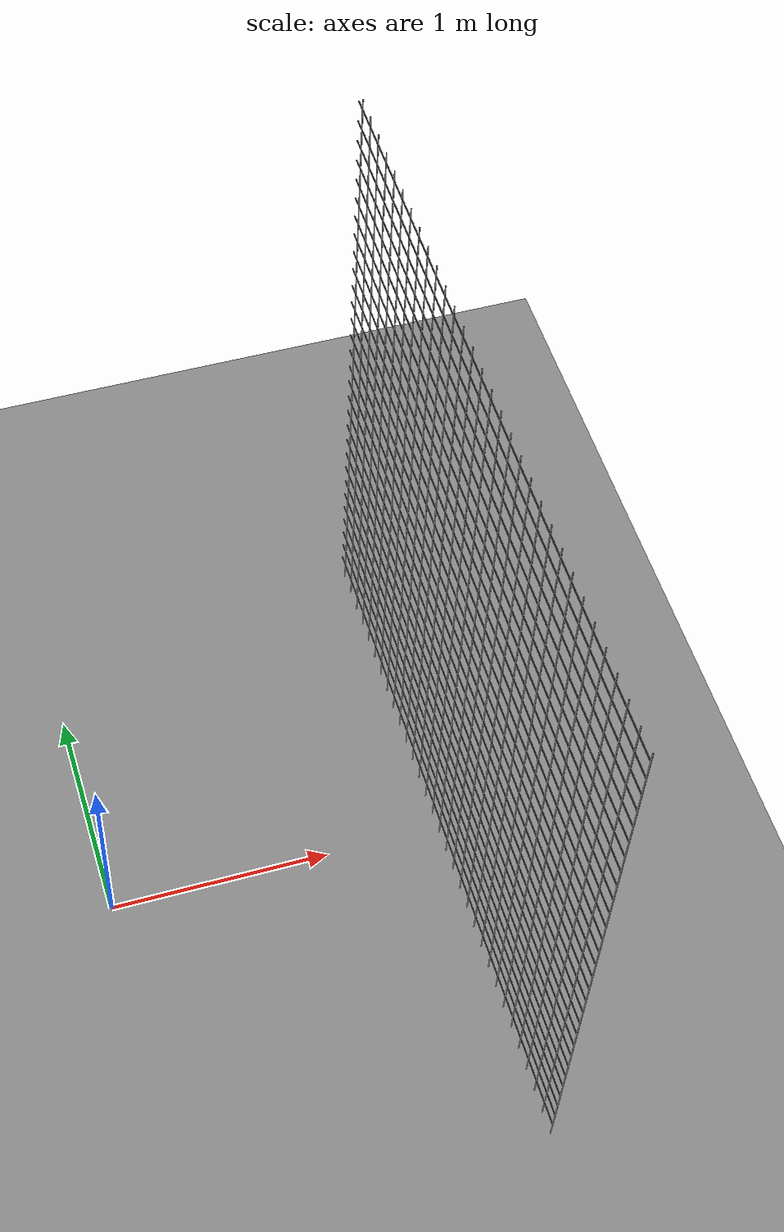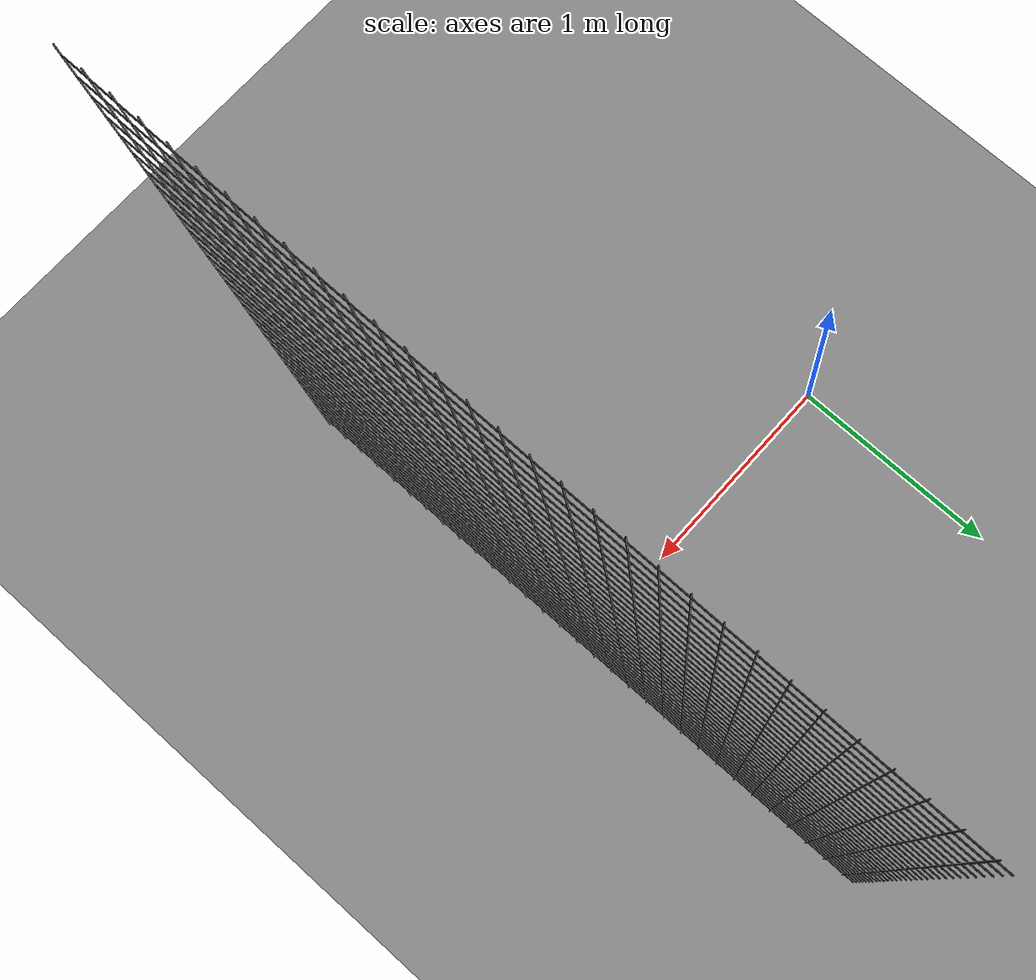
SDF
<sdf version="1.9">
 <world name="ecps295_cage10_monitor">
  <model name="ground_plane">
   <static>true</static>
   <link name="link">
    <collision name="collision">
     <geometry><plane><normal>0 0 1</normal><size>50 50</size></plane></geometry>
    </collision>
    <visual name="visual">
     <geometry><plane><normal>0 0 1</normal><size>50 50</size></plane></geometry>
     <material><ambient>0.5 0.5 0.5 1</ambient><diffuse>0.5 0.5 0.5 1</diffuse></material>
    </visual>
   </link>
  </model>
  <model name="net_e">
   <static>true</static>
   <link name="link">
    <collision name="c">
     <pose>1.525 0.000 1.525 0 0 0</pose>
     <geometry><box><size>0.020 3.050 3.050</size></box></geometry>
    </collision>
    <visual name="v0">
     <pose>1.525 -1.525 1.525 0 0 0.0000</pose>
     <geometry><box><size>0.004 0.004 3.050</size></box></geometry>
     <material><ambient>0.16 0.16 0.16 1</ambient><diffuse>0.16 0.16 0.16 1</diffuse></material>
    </visual>
    <visual name="v1">
     <pose>1.525 -1.425 1.525 0 0 0.0000</pose>
     <geometry><box><size>0.004 0.004 3.050</size></box></geometry>
     <material><ambient>0.16 0.16 0.16 1</ambient><diffuse>0.16 0.16 0.16 1</diffuse></material>
    </visual>
    <visual name="v2">
     <pose>1.525 -1.325 1.525 0 0 0.0000</pose>
     <geometry><box><size>0.004 0.004 3.050</size></box></geometry>
     <material><ambient>0.16 0.16 0.16 1</ambient><diffuse>0.16 0.16 0.16 1</diffuse></material>
    </visual>
    <visual name="v3">
     <pose>1.525 -1.225 1.525 0 0 0.0000</pose>
     <geometry><box><size>0.004 0.004 3.050</size></box></geometry>
     <material><ambient>0.16 0.16 0.16 1</ambient><diffuse>0.16 0.16 0.16 1</diffuse></material>
    </visual>
    <visual name="v4">
     <pose>1.525 -1.125 1.525 0 0 0.0000</pose>
     <geometry><box><size>0.004 0.004 3.050</size></box></geometry>
     <material><ambient>0.16 0.16 0.16 1</ambient><diffuse>0.16 0.16 0.16 1</diffuse></material>
    </visual>
    <visual name="v5">
     <pose>1.525 -1.025 1.525 0 0 0.0000</pose>
     <geometry><box><size>0.004 0.004 3.050</size></box></geometry>
     <material><ambient>0.16 0.16 0.16 1</ambient><diffuse>0.16 0.16 0.16 1</diffuse></material>
    </visual>
    <visual name="v6">
     <pose>1.525 -0.925 1.525 0 0 0.0000</pose>
     <geometry><box><size>0.004 0.004 3.050</size></box></geometry>
     <material><ambient>0.16 0.16 0.16 1</ambient><diffuse>0.16 0.16 0.16 1</diffuse></material>
    </visual>
    <visual name="v7">
     <pose>1.525 -0.825 1.525 0 0 0.0000</pose>
     <geometry><box><size>0.004 0.004 3.050</size></box></geometry>
     <material><ambient>0.16 0.16 0.16 1</ambient><diffuse>0.16 0.16 0.16 1</diffuse></material>
    </visual>
    <visual name="v8">
     <pose>1.525 -0.725 1.525 0 0 0.0000</pose>
     <geometry><box><size>0.004 0.004 3.050</size></box></geometry>
     <material><ambient>0.16 0.16 0.16 1</ambient><diffuse>0.16 0.16 0.16 1</diffuse></material>
    </visual>
    <visual name="v9">
     <pose>1.525 -0.625 1.525 0 0 0.0000</pose>
     <geometry><box><size>0.004 0.004 3.050</size></box></geometry>
     <material><ambient>0.16 0.16 0.16 1</ambient><diffuse>0.16 0.16 0.16 1</diffuse></material>
    </visual>
    <visual name="v10">
     <pose>1.525 -0.525 1.525 0 0 0.0000</pose>
     <geometry><box><size>0.004 0.004 3.050</size></box></geometry>
     <material><ambient>0.16 0.16 0.16 1</ambient><diffuse>0.16 0.16 0.16 1</diffuse></material>
    </visual>
    <visual name="v11">
     <pose>1.525 -0.425 1.525 0 0 0.0000</pose>
     <geometry><box><size>0.004 0.004 3.050</size></box></geometry>
     <material><ambient>0.16 0.16 0.16 1</ambient><diffuse>0.16 0.16 0.16 1</diffuse></material>
    </visual>
    <visual name="v12">
     <pose>1.525 -0.325 1.525 0 0 0.0000</pose>
     <geometry><box><size>0.004 0.004 3.050</size></box></geometry>
     <material><ambient>0.16 0.16 0.16 1</ambient><diffuse>0.16 0.16 0.16 1</diffuse></material>
    </visual>
    <visual name="v13">
     <pose>1.525 -0.225 1.525 0 0 0.0000</pose>
     <geometry><box><size>0.004 0.004 3.050</size></box></geometry>
     <material><ambient>0.16 0.16 0.16 1</ambient><diffuse>0.16 0.16 0.16 1</diffuse></material>
    </visual>
    <visual name="v14">
     <pose>1.525 -0.125 1.525 0 0 0.0000</pose>
     <geometry><box><size>0.004 0.004 3.050</size></box></geometry>
     <material><ambient>0.16 0.16 0.16 1</ambient><diffuse>0.16 0.16 0.16 1</diffuse></material>
    </visual>
    <visual name="v15">
     <pose>1.525 -0.025 1.525 0 0 0.0000</pose>
     <geometry><box><size>0.004 0.004 3.050</size></box></geometry>
     <material><ambient>0.16 0.16 0.16 1</ambient><diffuse>0.16 0.16 0.16 1</diffuse></material>
    </visual>
    <visual name="v16">
     <pose>1.525 0.075 1.525 0 0 0.0000</pose>
     <geometry><box><size>0.004 0.004 3.050</size></box></geometry>
     <material><ambient>0.16 0.16 0.16 1</ambient><diffuse>0.16 0.16 0.16 1</diffuse></material>
    </visual>
    <visual name="v17">
     <pose>1.525 0.175 1.525 0 0 0.0000</pose>
     <geometry><box><size>0.004 0.004 3.050</size></box></geometry>
     <material><ambient>0.16 0.16 0.16 1</ambient><diffuse>0.16 0.16 0.16 1</diffuse></material>
    </visual>
    <visual name="v18">
     <pose>1.525 0.275 1.525 0 0 0.0000</pose>
     <geometry><box><size>0.004 0.004 3.050</size></box></geometry>
     <material><ambient>0.16 0.16 0.16 1</ambient><diffuse>0.16 0.16 0.16 1</diffuse></material>
    </visual>
    <visual name="v19">
     <pose>1.525 0.375 1.525 0 0 0.0000</pose>
     <geometry><box><size>0.004 0.004 3.050</size></box></geometry>
     <material><ambient>0.16 0.16 0.16 1</ambient><diffuse>0.16 0.16 0.16 1</diffuse></material>
    </visual>
    <visual name="v20">
     <pose>1.525 0.475 1.525 0 0 0.0000</pose>
     <geometry><box><size>0.004 0.004 3.050</size></box></geometry>
     <material><ambient>0.16 0.16 0.16 1</ambient><diffuse>0.16 0.16 0.16 1</diffuse></material>
    </visual>
    <visual name="v21">
     <pose>1.525 0.575 1.525 0 0 0.0000</pose>
     <geometry><box><size>0.004 0.004 3.050</size></box></geometry>
     <material><ambient>0.16 0.16 0.16 1</ambient><diffuse>0.16 0.16 0.16 1</diffuse></material>
    </visual>
    <visual name="v22">
     <pose>1.525 0.675 1.525 0 0 0.0000</pose>
     <geometry><box><size>0.004 0.004 3.050</size></box></geometry>
     <material><ambient>0.16 0.16 0.16 1</ambient><diffuse>0.16 0.16 0.16 1</diffuse></material>
    </visual>
    <visual name="v23">
     <pose>1.525 0.775 1.525 0 0 0.0000</pose>
     <geometry><box><size>0.004 0.004 3.050</size></box></geometry>
     <material><ambient>0.16 0.16 0.16 1</ambient><diffuse>0.16 0.16 0.16 1</diffuse></material>
    </visual>
    <visual name="v24">
     <pose>1.525 0.875 1.525 0 0 0.0000</pose>
     <geometry><box><size>0.004 0.004 3.050</size></box></geometry>
     <material><ambient>0.16 0.16 0.16 1</ambient><diffuse>0.16 0.16 0.16 1</diffuse></material>
    </visual>
    <visual name="v25">
     <pose>1.525 0.975 1.525 0 0 0.0000</pose>
     <geometry><box><size>0.004 0.004 3.050</size></box></geometry>
     <material><ambient>0.16 0.16 0.16 1</ambient><diffuse>0.16 0.16 0.16 1</diffuse></material>
    </visual>
    <visual name="v26">
     <pose>1.525 1.075 1.525 0 0 0.0000</pose>
     <geometry><box><size>0.004 0.004 3.050</size></box></geometry>
     <material><ambient>0.16 0.16 0.16 1</ambient><diffuse>0.16 0.16 0.16 1</diffuse></material>
    </visual>
    <visual name="v27">
     <pose>1.525 1.175 1.525 0 0 0.0000</pose>
     <geometry><box><size>0.004 0.004 3.050</size></box></geometry>
     <material><ambient>0.16 0.16 0.16 1</ambient><diffuse>0.16 0.16 0.16 1</diffuse></material>
    </visual>
    <visual name="v28">
     <pose>1.525 1.275 1.525 0 0 0.0000</pose>
     <geometry><box><size>0.004 0.004 3.050</size></box></geometry>
     <material><ambient>0.16 0.16 0.16 1</ambient><diffuse>0.16 0.16 0.16 1</diffuse></material>
    </visual>
    <visual name="v29">
     <pose>1.525 1.375 1.525 0 0 0.0000</pose>
     <geometry><box><size>0.004 0.004 3.050</size></box></geometry>
     <material><ambient>0.16 0.16 0.16 1</ambient><diffuse>0.16 0.16 0.16 1</diffuse></material>
    </visual>
    <visual name="v30">
     <pose>1.525 1.475 1.525 0 0 0.0000</pose>
     <geometry><box><size>0.004 0.004 3.050</size></box></geometry>
     <material><ambient>0.16 0.16 0.16 1</ambient><diffuse>0.16 0.16 0.16 1</diffuse></material>
    </visual>
    <visual name="h1">
     <pose>1.525 0.000 0.100 0 0 0.0000</pose>
     <geometry><box><size>0.004 3.050 0.004</size></box></geometry>
     <material><ambient>0.16 0.16 0.16 1</ambient><diffuse>0.16 0.16 0.16 1</diffuse></material>
    </visual>
    <visual name="h2">
     <pose>1.525 0.000 0.200 0 0 0.0000</pose>
     <geometry><box><size>0.004 3.050 0.004</size></box></geometry>
     <material><ambient>0.16 0.16 0.16 1</ambient><diffuse>0.16 0.16 0.16 1</diffuse></material>
    </visual>
    <visual name="h3">
     <pose>1.525 0.000 0.300 0 0 0.0000</pose>
     <geometry><box><size>0.004 3.050 0.004</size></box></geometry>
     <material><ambient>0.16 0.16 0.16 1</ambient><diffuse>0.16 0.16 0.16 1</diffuse></material>
    </visual>
    <visual name="h4">
     <pose>1.525 0.000 0.400 0 0 0.0000</pose>
     <geometry><box><size>0.004 3.050 0.004</size></box></geometry>
     <material><ambient>0.16 0.16 0.16 1</ambient><diffuse>0.16 0.16 0.16 1</diffuse></material>
    </visual>
    <visual name="h5">
     <pose>1.525 0.000 0.500 0 0 0.0000</pose>
     <geometry><box><size>0.004 3.050 0.004</size></box></geometry>
     <material><ambient>0.16 0.16 0.16 1</ambient><diffuse>0.16 0.16 0.16 1</diffuse></material>
    </visual>
    <visual name="h6">
     <pose>1.525 0.000 0.600 0 0 0.0000</pose>
     <geometry><box><size>0.004 3.050 0.004</size></box></geometry>
     <material><ambient>0.16 0.16 0.16 1</ambient><diffuse>0.16 0.16 0.16 1</diffuse></material>
    </visual>
    <visual name="h7">
     <pose>1.525 0.000 0.700 0 0 0.0000</pose>
     <geometry><box><size>0.004 3.050 0.004</size></box></geometry>
     <material><ambient>0.16 0.16 0.16 1</ambient><diffuse>0.16 0.16 0.16 1</diffuse></material>
    </visual>
    <visual name="h8">
     <pose>1.525 0.000 0.800 0 0 0.0000</pose>
     <geometry><box><size>0.004 3.050 0.004</size></box></geometry>
     <material><ambient>0.16 0.16 0.16 1</ambient><diffuse>0.16 0.16 0.16 1</diffuse></material>
    </visual>
    <visual name="h9">
     <pose>1.525 0.000 0.900 0 0 0.0000</pose>
     <geometry><box><size>0.004 3.050 0.004</size></box></geometry>
     <material><ambient>0.16 0.16 0.16 1</ambient><diffuse>0.16 0.16 0.16 1</diffuse></material>
    </visual>
    <visual name="h10">
     <pose>1.525 0.000 1.000 0 0 0.0000</pose>
     <geometry><box><size>0.004 3.050 0.004</size></box></geometry>
     <material><ambient>0.16 0.16 0.16 1</ambient><diffuse>0.16 0.16 0.16 1</diffuse></material>
    </visual>
    <visual name="h11">
     <pose>1.525 0.000 1.100 0 0 0.0000</pose>
     <geometry><box><size>0.004 3.050 0.004</size></box></geometry>
     <material><ambient>0.16 0.16 0.16 1</ambient><diffuse>0.16 0.16 0.16 1</diffuse></material>
    </visual>
    <visual name="h12">
     <pose>1.525 0.000 1.200 0 0 0.0000</pose>
     <geometry><box><size>0.004 3.050 0.004</size></box></geometry>
     <material><ambient>0.16 0.16 0.16 1</ambient><diffuse>0.16 0.16 0.16 1</diffuse></material>
    </visual>
    <visual name="h13">
     <pose>1.525 0.000 1.300 0 0 0.0000</pose>
     <geometry><box><size>0.004 3.050 0.004</size></box></geometry>
     <material><ambient>0.16 0.16 0.16 1</ambient><diffuse>0.16 0.16 0.16 1</diffuse></material>
    </visual>
    <visual name="h14">
     <pose>1.525 0.000 1.400 0 0 0.0000</pose>
     <geometry><box><size>0.004 3.050 0.004</size></box></geometry>
     <material><ambient>0.16 0.16 0.16 1</ambient><diffuse>0.16 0.16 0.16 1</diffuse></material>
    </visual>
    <visual name="h15">
     <pose>1.525 0.000 1.500 0 0 0.0000</pose>
     <geometry><box><size>0.004 3.050 0.004</size></box></geometry>
     <material><ambient>0.16 0.16 0.16 1</ambient><diffuse>0.16 0.16 0.16 1</diffuse></material>
    </visual>
    <visual name="h16">
     <pose>1.525 0.000 1.600 0 0 0.0000</pose>
     <geometry><box><size>0.004 3.050 0.004</size></box></geometry>
     <material><ambient>0.16 0.16 0.16 1</ambient><diffuse>0.16 0.16 0.16 1</diffuse></material>
    </visual>
    <visual name="h17">
     <pose>1.525 0.000 1.700 0 0 0.0000</pose>
     <geometry><box><size>0.004 3.050 0.004</size></box></geometry>
     <material><ambient>0.16 0.16 0.16 1</ambient><diffuse>0.16 0.16 0.16 1</diffuse></material>
    </visual>
    <visual name="h18">
     <pose>1.525 0.000 1.800 0 0 0.0000</pose>
     <geometry><box><size>0.004 3.050 0.004</size></box></geometry>
     <material><ambient>0.16 0.16 0.16 1</ambient><diffuse>0.16 0.16 0.16 1</diffuse></material>
    </visual>
    <visual name="h19">
     <pose>1.525 0.000 1.900 0 0 0.0000</pose>
     <geometry><box><size>0.004 3.050 0.004</size></box></geometry>
     <material><ambient>0.16 0.16 0.16 1</ambient><diffuse>0.16 0.16 0.16 1</diffuse></material>
    </visual>
    <visual name="h20">
     <pose>1.525 0.000 2.000 0 0 0.0000</pose>
     <geometry><box><size>0.004 3.050 0.004</size></box></geometry>
     <material><ambient>0.16 0.16 0.16 1</ambient><diffuse>0.16 0.16 0.16 1</diffuse></material>
    </visual>
    <visual name="h21">
     <pose>1.525 0.000 2.100 0 0 0.0000</pose>
     <geometry><box><size>0.004 3.050 0.004</size></box></geometry>
     <material><ambient>0.16 0.16 0.16 1</ambient><diffuse>0.16 0.16 0.16 1</diffuse></material>
    </visual>
    <visual name="h22">
     <pose>1.525 0.000 2.200 0 0 0.0000</pose>
     <geometry><box><size>0.004 3.050 0.004</size></box></geometry>
     <material><ambient>0.16 0.16 0.16 1</ambient><diffuse>0.16 0.16 0.16 1</diffuse></material>
    </visual>
    <visual name="h23">
     <pose>1.525 0.000 2.300 0 0 0.0000</pose>
     <geometry><box><size>0.004 3.050 0.004</size></box></geometry>
     <material><ambient>0.16 0.16 0.16 1</ambient><diffuse>0.16 0.16 0.16 1</diffuse></material>
    </visual>
    <visual name="h24">
     <pose>1.525 0.000 2.400 0 0 0.0000</pose>
     <geometry><box><size>0.004 3.050 0.004</size></box></geometry>
     <material><ambient>0.16 0.16 0.16 1</ambient><diffuse>0.16 0.16 0.16 1</diffuse></material>
    </visual>
    <visual name="h25">
     <pose>1.525 0.000 2.500 0 0 0.0000</pose>
     <geometry><box><size>0.004 3.050 0.004</size></box></geometry>
     <material><ambient>0.16 0.16 0.16 1</ambient><diffuse>0.16 0.16 0.16 1</diffuse></material>
    </visual>
    <visual name="h26">
     <pose>1.525 0.000 2.600 0 0 0.0000</pose>
     <geometry><box><size>0.004 3.050 0.004</size></box></geometry>
     <material><ambient>0.16 0.16 0.16 1</ambient><diffuse>0.16 0.16 0.16 1</diffuse></material>
    </visual>
    <visual name="h27">
     <pose>1.525 0.000 2.700 0 0 0.0000</pose>
     <geometry><box><size>0.004 3.050 0.004</size></box></geometry>
     <material><ambient>0.16 0.16 0.16 1</ambient><diffuse>0.16 0.16 0.16 1</diffuse></material>
    </visual>
    <visual name="h28">
     <pose>1.525 0.000 2.800 0 0 0.0000</pose>
     <geometry><box><size>0.004 3.050 0.004</size></box></geometry>
     <material><ambient>0.16 0.16 0.16 1</ambient><diffuse>0.16 0.16 0.16 1</diffuse></material>
    </visual>
    <visual name="h29">
     <pose>1.525 0.000 2.900 0 0 0.0000</pose>
     <geometry><box><size>0.004 3.050 0.004</size></box></geometry>
     <material><ambient>0.16 0.16 0.16 1</ambient><diffuse>0.16 0.16 0.16 1</diffuse></material>
    </visual>
    <visual name="h30">
     <pose>1.525 0.000 3.000 0 0 0.0000</pose>
     <geometry><box><size>0.004 3.050 0.004</size></box></geometry>
     <material><ambient>0.16 0.16 0.16 1</ambient><diffuse>0.16 0.16 0.16 1</diffuse></material>
    </visual>
   </link>
  </model>
 </world>
</sdf>
